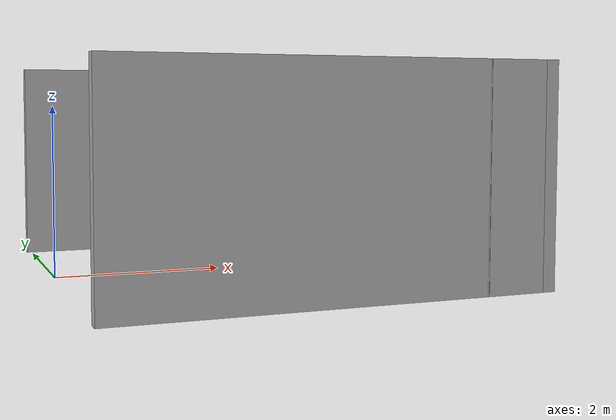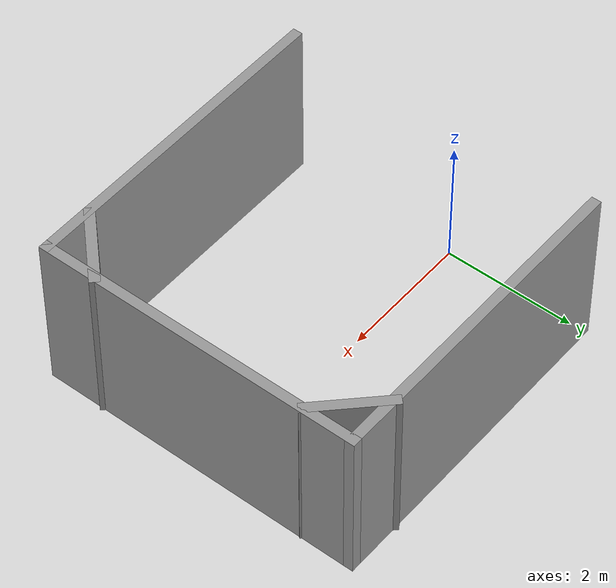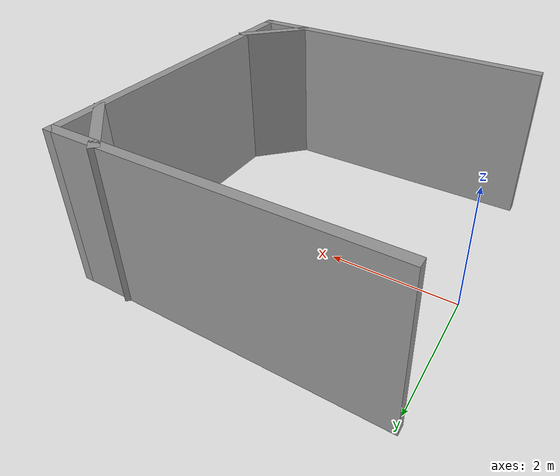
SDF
<?xml version='1.0'?>
<sdf version='1.7'>
  <model name='U'>
    <pose>2.4704 -0.220765 0 0 -0 0</pose>
    <link name='Wall_0'>
      <collision name='Wall_0_Collision'>
        <geometry>
          <box>
            <size>5 0.15 2.5</size>
          </box>
        </geometry>
        <pose>0 0 1.25 0 -0 0</pose>
      </collision>
      <visual name='Wall_0_Visual'>
        <pose>0 0 1.25 0 -0 0</pose>
        <geometry>
          <box>
            <size>5 0.15 2.5</size>
          </box>
        </geometry>
        <material>
          <script>
            <uri>file://media/materials/scripts/gazebo.material</uri>
            <name>Gazebo/Grey</name>
          </script>
          <ambient>1 1 1 1</ambient>
        </material>
        <meta>
          <layer>0</layer>
        </meta>
      </visual>
      <pose>-0.025406 -2.44923 0 0 -0 0</pose>
    </link>
    <link name='Wall_11'>
      <collision name='Wall_11_Collision'>
        <geometry>
          <box>
            <size>1.25 0.15 2.5</size>
          </box>
        </geometry>
        <pose>0 0 1.25 0 -0 0</pose>
      </collision>
      <visual name='Wall_11_Visual'>
        <pose>0 0 1.25 0 -0 0</pose>
        <geometry>
          <box>
            <size>1.25 0.15 2.5</size>
          </box>
        </geometry>
        <material>
          <script>
            <uri>file://media/materials/scripts/gazebo.material</uri>
            <name>Gazebo/Grey</name>
          </script>
          <ambient>1 1 1 1</ambient>
        </material>
        <meta>
          <layer>0</layer>
        </meta>
      </visual>
      <pose>2.03043 -2.03689 0 0 -0 0.785398</pose>
    </link>
    <link name='Wall_6'>
      <collision name='Wall_6_Collision'>
        <geometry>
          <box>
            <size>5 0.15 2.5</size>
          </box>
        </geometry>
        <pose>0 0 1.25 0 -0 0</pose>
      </collision>
      <visual name='Wall_6_Visual'>
        <pose>0 0 1.25 0 -0 0</pose>
        <geometry>
          <box>
            <size>5 0.15 2.5</size>
          </box>
        </geometry>
        <material>
          <script>
            <uri>file://media/materials/scripts/gazebo.material</uri>
            <name>Gazebo/Grey</name>
          </script>
          <ambient>1 1 1 1</ambient>
        </material>
        <meta>
          <layer>0</layer>
        </meta>
      </visual>
      <pose>2.39959 -0.024235 0 0 -0 1.5708</pose>
    </link>
    <link name='Wall_7'>
      <collision name='Wall_7_Collision'>
        <geometry>
          <box>
            <size>5 0.15 2.5</size>
          </box>
        </geometry>
        <pose>0 0 1.25 0 -0 0</pose>
      </collision>
      <visual name='Wall_7_Visual'>
        <pose>0 0 1.25 0 -0 0</pose>
        <geometry>
          <box>
            <size>5 0.15 2.5</size>
          </box>
        </geometry>
        <material>
          <script>
            <uri>file://media/materials/scripts/gazebo.material</uri>
            <name>Gazebo/Grey</name>
          </script>
          <ambient>1 1 1 1</ambient>
        </material>
        <meta>
          <layer>0</layer>
        </meta>
      </visual>
      <pose>-0.025406 2.40076 0 0 -0 3.14159</pose>
    </link>
    <link name='Wall_9'>
      <collision name='Wall_9_Collision'>
        <geometry>
          <box>
            <size>1.25 0.15 2.5</size>
          </box>
        </geometry>
        <pose>0 0 1.25 0 -0 0</pose>
      </collision>
      <visual name='Wall_9_Visual'>
        <pose>0 0 1.25 0 -0 0</pose>
        <geometry>
          <box>
            <size>1.25 0.15 2.5</size>
          </box>
        </geometry>
        <material>
          <script>
            <uri>file://media/materials/scripts/gazebo.material</uri>
            <name>Gazebo/Grey</name>
          </script>
          <ambient>1 1 1 1</ambient>
        </material>
        <meta>
          <layer>0</layer>
        </meta>
      </visual>
      <pose>2.00001 2.03689 0 0 -0 -0.785398</pose>
    </link>
    <static>1</static>
  </model>
</sdf>
